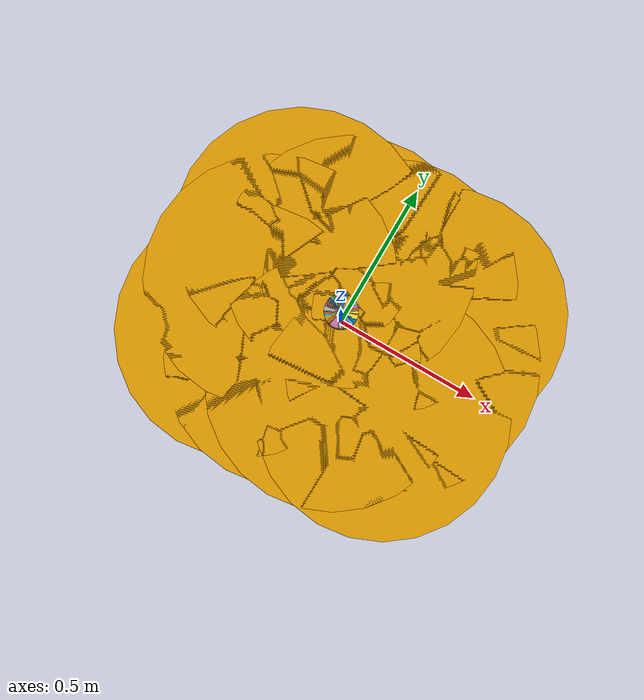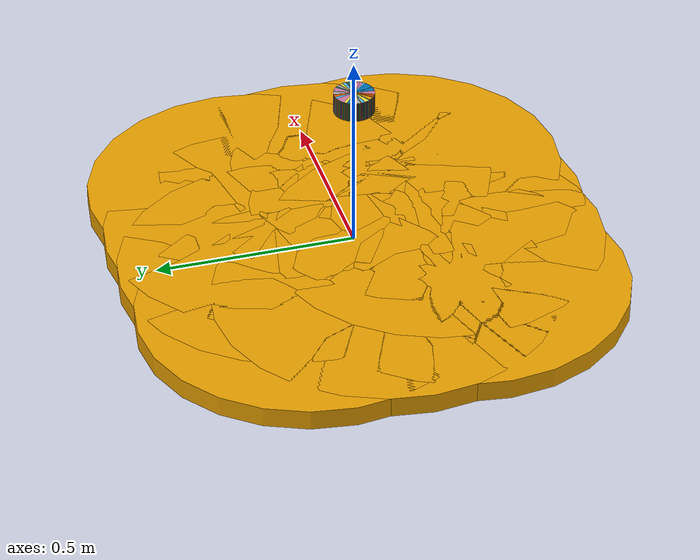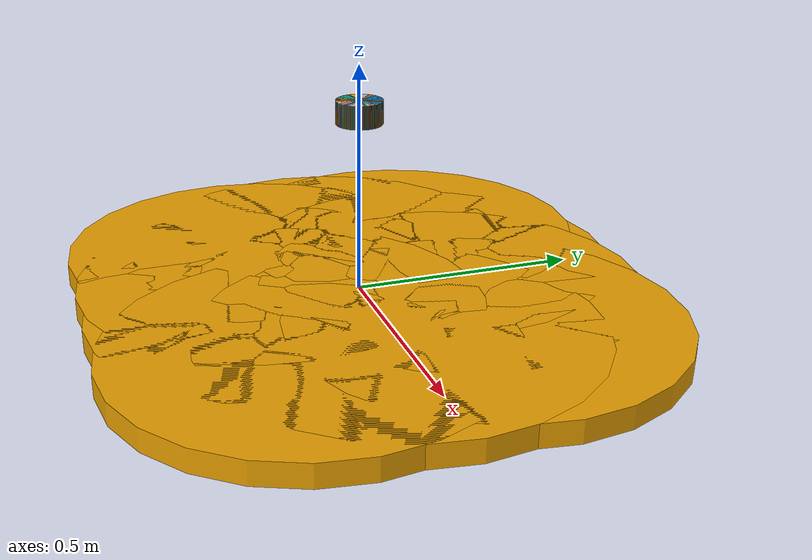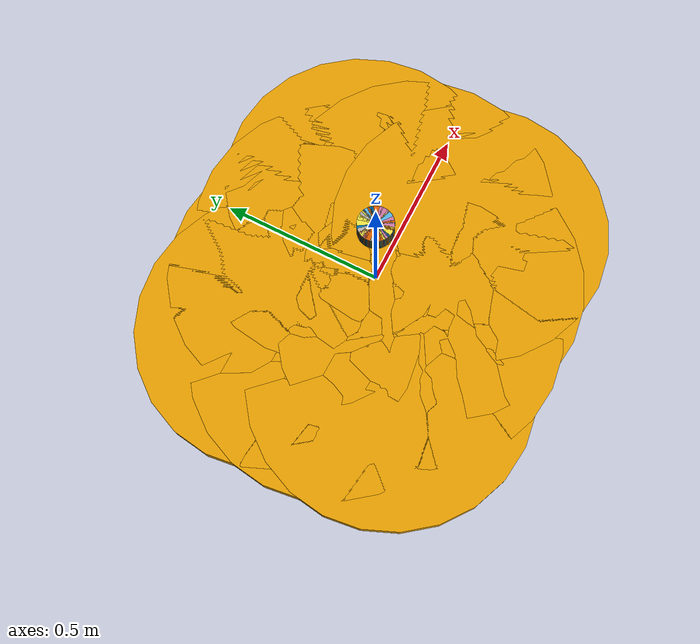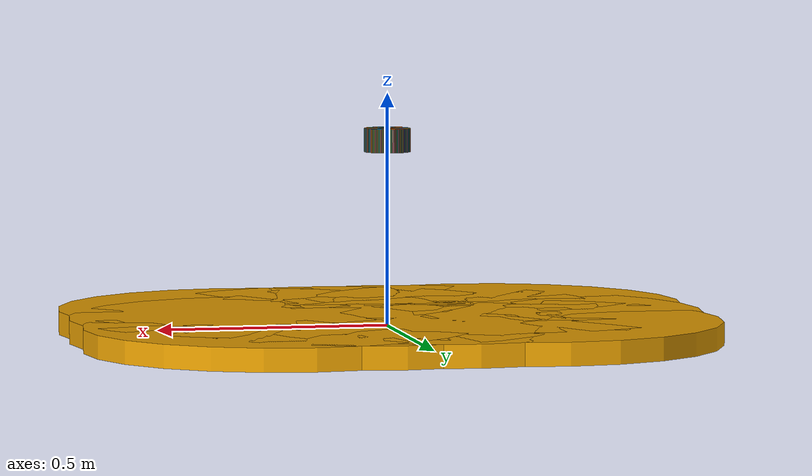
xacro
<?xml version="1.0"?>
<robot name="robot" xmlns:xacro="http://ros.org/wiki/xacro">

    <!-- Simulation Plugins -->
    <gazebo>
        <gravity>0</gravity>
        <self_collide>0</self_collide>

        <plugin name="gazebo_planar_move_plugin" filename="libgazebo_planar_move_plugin.so">
            <robot_namespace>/</robot_namespace>
            <robot_frame>base_link</robot_frame>
            <odometry_frame>odom</odometry_frame>
            <odometry_topic>odom</odometry_topic>
            <command_topic>cmd_vel</command_topic>
            <control_mode>position</control_mode>
            <publish_odometry>true</publish_odometry>
            <publish_tf>true</publish_tf>
        </plugin>
    </gazebo>

    <xacro:macro name="robot_circle" params="x_offset y_offset radius">
        <visual>
            <origin xyz="${x_offset} ${y_offset} 0"/>
            <geometry>
                <cylinder length="0.05" radius="${radius}"/>
            </geometry>
        </visual>
        <collision>
            <origin xyz="${x_offset} ${y_offset} 0"/>
            <geometry>
                <cylinder length="0.05" radius="${radius}"/>
            </geometry>
        </collision>
    </xacro:macro>

    <link name="base_link">
        <xacro:robot_circle x_offset="-0.268" y_offset=" 0.000" radius="0.420"/>
        <xacro:robot_circle x_offset=" 0.268" y_offset=" 0.000" radius="0.420"/>
        <xacro:robot_circle x_offset=" 0.265" y_offset="-0.185" radius="0.420"/>
        <xacro:robot_circle x_offset=" 0.077" y_offset="-0.185" radius="0.420"/>
        <xacro:robot_circle x_offset="-0.077" y_offset="-0.185" radius="0.420"/>
        <xacro:robot_circle x_offset="-0.265" y_offset="-0.185" radius="0.420"/>
        <xacro:robot_circle x_offset=" 0.265" y_offset=" 0.185" radius="0.420"/>
        <xacro:robot_circle x_offset="-0.265" y_offset=" 0.185" radius="0.420"/>
        <xacro:robot_circle x_offset="-0.077" y_offset=" 0.185" radius="0.420"/>
        <xacro:robot_circle x_offset=" 0.077" y_offset=" 0.185" radius="0.420"/>
        <inertial>
            <origin xyz="0 0 0" rpy="0 0 0"/>
            <mass value="1"/>
            <inertia
                    ixx="1" ixy="0" ixz="0"
                    iyy="1" iyz="0"
                    izz="1"/>
        </inertial>
    </link>

    <xacro:macro name="laser_sensor" params="suffix rotation">
        <joint name="laser_joint_${suffix}" type="fixed">
            <origin xyz="0 0 0.4" rpy="0 0 ${rotation}"/>
            <child link="laser_${suffix}"/>
            <parent link="base_link"/>
        </joint>
        <link name="laser_${suffix}">
            <visual>
                <origin xyz="0 0 0"/>
                <geometry>
                    <cylinder length="0.05" radius="0.05"/>
                </geometry>
            </visual>
            <collision>
                <origin xyz="0 0 0"/>
                <geometry>
                    <cylinder length="0.05" radius="0.05"/>
                </geometry>
            </collision>
            <inertial>
                <mass value="1"/>
                <origin xyz="0 0 0"/>
                <inertia
                        ixx="1" ixy="0" ixz="0"
                        iyy="1" iyz="0"
                        izz="1"/>
            </inertial>
        </link>
        <gazebo reference="laser_${suffix}">
            <sensor type="ray" name="laser_${suffix}">
                <pose>0 0 0 0 0 0</pose>
                <visualize>false</visualize>
                <update_rate>40</update_rate>
                <ray>
                    <scan>
                        <horizontal>
                            <samples>540</samples>
                            <resolution>1</resolution>
                            <min_angle>-2.35619</min_angle>
                            <max_angle>2.35619</max_angle>
                        </horizontal>
                    </scan>
                    <range>
                        <min>0.1</min>
                        <max>30.0</max>
                        <resolution>0.01</resolution>
                    </range>
                    <noise>
                        <type>gaussian</type>
                        <mean>0.0</mean>
                        <stddev>0.001</stddev>
                    </noise>
                </ray>
                <plugin name="gazebo_laser_plugin" filename="libgazebo_laser_plugin.so">
                    <frame_name>laser_${suffix}</frame_name>
                    <robot_namespace>/</robot_namespace>
                </plugin>
            </sensor>
        </gazebo>
    </xacro:macro>

    <xacro:laser_sensor suffix="front" rotation="0.0"/>
    <xacro:laser_sensor suffix="back" rotation="${pi}"/>

    <xacro:macro name="sonar_sensor" params="suffix rotation">
        <joint name="sonar_${suffix}_joint" type="fixed">
            <origin xyz="0 0 0.4" rpy="0 0 ${rotation}"/>
            <child link="sonar_${suffix}"/>
            <parent link="base_link"/>
        </joint>
        <link name="sonar_${suffix}">
            <visual>
                <origin xyz="0 0 0"/>
                <geometry>
                    <cylinder length="0.05" radius="0.05"/>
                </geometry>
            </visual>
            <collision>
                <origin xyz="0 0 0"/>
                <geometry>
                    <cylinder length="0.05" radius="0.05"/>
                </geometry>
            </collision>
            <inertial>
                <mass value="1"/>
                <origin xyz="0 0 0"/>
                <inertia
                        ixx="1" ixy="0" ixz="0"
                        iyy="1" iyz="0"
                        izz="1"/>
            </inertial>
        </link>
        <gazebo reference="sonar_${suffix}">
            <sensor type="ray" name="sonar_${suffix}">
                <pose>0 0 0 0 0 0</pose>
                <visualize>false</visualize>
                <update_rate>10</update_rate>
                <ray>
                    <scan>
                        <horizontal>
                            <samples>10</samples>
                            <resolution>1</resolution>
                            <min_angle>-0.4</min_angle>
                            <max_angle>0.4</max_angle>
                        </horizontal>
                        <vertical>
                            <samples>10</samples>
                            <resolution>1</resolution>
                            <min_angle>-0.2</min_angle>
                            <max_angle>0.2</max_angle>
                        </vertical>
                    </scan>
                    <range>
                        <min>0.15</min>
                        <max>1.5</max>
                        <resolution>0.01</resolution>
                    </range>
                </ray>
                <plugin name="gazebo_range_plugin" filename="libgazebo_range_plugin.so">
                    <robot_namespace>/</robot_namespace>
                    <field_of_view>0.8</field_of_view>
                </plugin>
            </sensor>
        </gazebo>
    </xacro:macro>

    <xacro:sonar_sensor suffix="0" rotation="-3.0"/>
    <xacro:sonar_sensor suffix="1" rotation="-2.5"/>
    <xacro:sonar_sensor suffix="2" rotation="-2.0"/>
    <xacro:sonar_sensor suffix="3" rotation="-1.5"/>
    <xacro:sonar_sensor suffix="4" rotation="-1.0"/>
    <xacro:sonar_sensor suffix="5" rotation="-0.5"/>
    <xacro:sonar_sensor suffix="6" rotation="0.0"/>
    <xacro:sonar_sensor suffix="7" rotation="0.5"/>
    <xacro:sonar_sensor suffix="8" rotation="1.0"/>
    <xacro:sonar_sensor suffix="9" rotation="1.5"/>
    <xacro:sonar_sensor suffix="10" rotation="2.0"/>
    <xacro:sonar_sensor suffix="11" rotation="2.5"/>
    <xacro:sonar_sensor suffix="12" rotation="3.0"/>

</robot>
